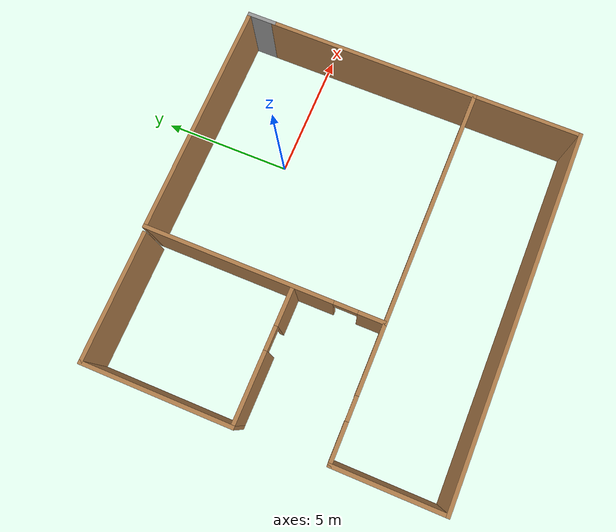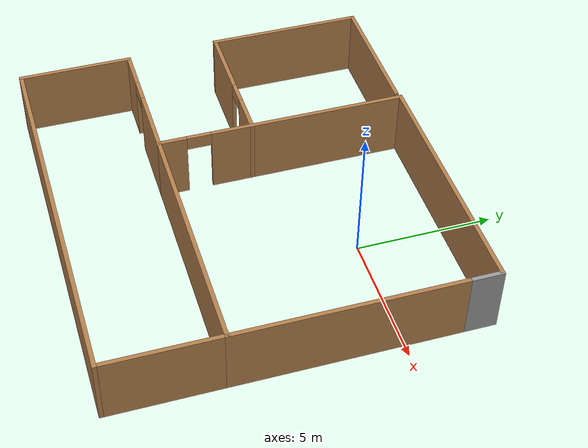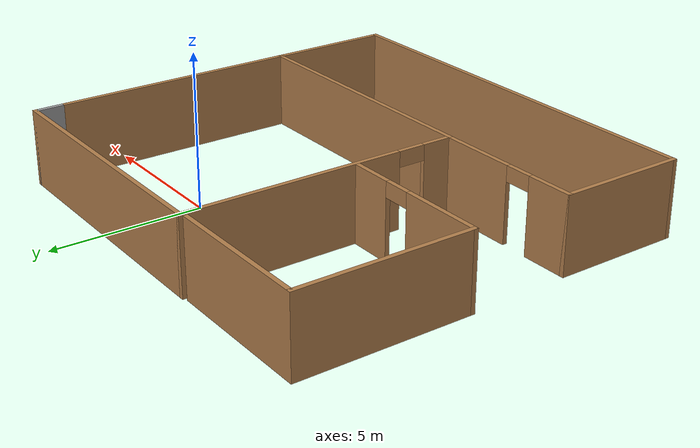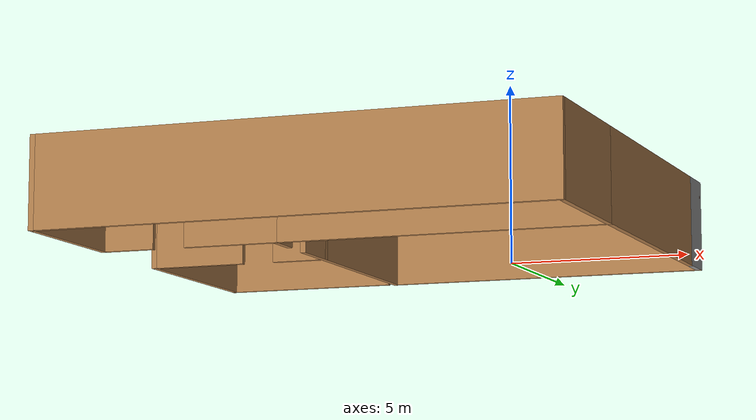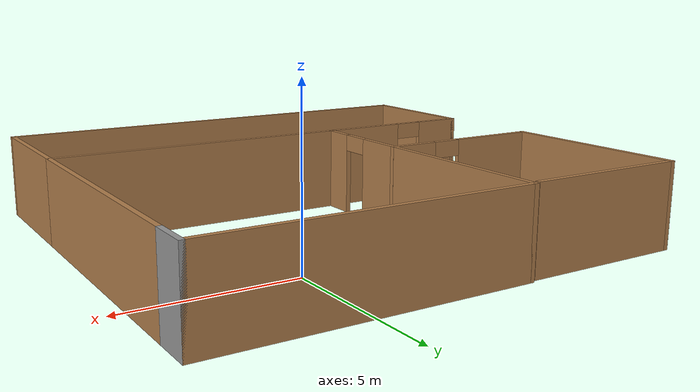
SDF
<?xml version='1.0'?>
<sdf version='1.7'>
  <model name='classrooms'>
    <pose>-2.59942 -3.43 0 0 -0 0</pose>
    <link name='Wall_0'>
      <pose>-2.00058 2.05 0 0 -0 -1.5708</pose>
      <visual name='Wall_0_Visual_0'>
        <pose>-0.990815 0 1.25 0 -0 0</pose>
        <geometry>
          <box>
            <size>7.26837 0.15 2.5</size>
          </box>
        </geometry>
        <material>
          <script>
            <uri>file://media/materials/scripts/gazebo.material</uri>
            <name>Gazebo/Wood</name>
          </script>
          <ambient>1 1 1 1</ambient>
        </material>
        <meta>
          <layer>0</layer>
        </meta>
      </visual>
      <collision name='Wall_0_Collision_0'>
        <geometry>
          <box>
            <size>7.26837 0.15 2.5</size>
          </box>
        </geometry>
        <pose>-0.990815 0 1.25 0 -0 0</pose>
      </collision>
      <visual name='Wall_0_Visual_1'>
        <pose>4.08418 0 1.25 0 -0 0</pose>
        <geometry>
          <box>
            <size>1.08163 0.15 2.5</size>
          </box>
        </geometry>
        <material>
          <script>
            <uri>file://media/materials/scripts/gazebo.material</uri>
            <name>Gazebo/Wood</name>
          </script>
          <ambient>1 1 1 1</ambient>
        </material>
        <meta>
          <layer>0</layer>
        </meta>
      </visual>
      <collision name='Wall_0_Collision_1'>
        <geometry>
          <box>
            <size>1.08163 0.15 2.5</size>
          </box>
        </geometry>
        <pose>4.08418 0 1.25 0 -0 0</pose>
      </collision>
      <visual name='Wall_0_Visual_2'>
        <pose>3.09337 0 2.25 0 -0 0</pose>
        <geometry>
          <box>
            <size>0.9 0.15 0.5</size>
          </box>
        </geometry>
        <material>
          <script>
            <uri>file://media/materials/scripts/gazebo.material</uri>
            <name>Gazebo/Wood</name>
          </script>
          <ambient>1 1 1 1</ambient>
        </material>
        <meta>
          <layer>0</layer>
        </meta>
      </visual>
      <collision name='Wall_0_Collision_2'>
        <geometry>
          <box>
            <size>0.9 0.15 0.5</size>
          </box>
        </geometry>
        <pose>3.09337 0 2.25 0 -0 0</pose>
      </collision>
    </link>
    <link name='Wall_10'>
      <pose>-4.54942 0.918041 0 0 -0 3.14159</pose>
      <visual name='Wall_10_Visual_0'>
        <pose>-1.84258 0 1.25 0 -0 0</pose>
        <geometry>
          <box>
            <size>1.56485 0.15 2.5</size>
          </box>
        </geometry>
        <material>
          <script>
            <uri>file://media/materials/scripts/gazebo.material</uri>
            <name>Gazebo/Wood</name>
          </script>
          <ambient>1 1 1 1</ambient>
        </material>
        <meta>
          <layer>0</layer>
        </meta>
      </visual>
      <collision name='Wall_10_Collision_0'>
        <geometry>
          <box>
            <size>1.56485 0.15 2.5</size>
          </box>
        </geometry>
        <pose>-1.84258 0 1.25 0 -0 0</pose>
      </collision>
      <visual name='Wall_10_Visual_1'>
        <pose>1.23242 0 1.25 0 -0 0</pose>
        <geometry>
          <box>
            <size>2.78516 0.15 2.5</size>
          </box>
        </geometry>
        <material>
          <script>
            <uri>file://media/materials/scripts/gazebo.material</uri>
            <name>Gazebo/Wood</name>
          </script>
          <ambient>1 1 1 1</ambient>
        </material>
        <meta>
          <layer>0</layer>
        </meta>
      </visual>
      <collision name='Wall_10_Collision_1'>
        <geometry>
          <box>
            <size>2.78516 0.15 2.5</size>
          </box>
        </geometry>
        <pose>1.23242 0 1.25 0 -0 0</pose>
      </collision>
      <visual name='Wall_10_Visual_2'>
        <pose>-0.610155 0 2.25 0 -0 0</pose>
        <geometry>
          <box>
            <size>0.9 0.15 0.5</size>
          </box>
        </geometry>
        <material>
          <script>
            <uri>file://media/materials/scripts/gazebo.material</uri>
            <name>Gazebo/Wood</name>
          </script>
          <ambient>1 1 1 1</ambient>
        </material>
        <meta>
          <layer>0</layer>
        </meta>
      </visual>
      <collision name='Wall_10_Collision_2'>
        <geometry>
          <box>
            <size>0.9 0.15 0.5</size>
          </box>
        </geometry>
        <pose>-0.610155 0 2.25 0 -0 0</pose>
      </collision>
    </link>
    <link name='Wall_11'>
      <collision name='Wall_11_Collision'>
        <geometry>
          <box>
            <size>5.75 0.15 2.5</size>
          </box>
        </geometry>
        <pose>0 0 1.25 0 -0 0</pose>
      </collision>
      <visual name='Wall_11_Visual'>
        <pose>0 0 1.25 0 -0 0</pose>
        <geometry>
          <box>
            <size>5.75 0.15 2.5</size>
          </box>
        </geometry>
        <material>
          <script>
            <uri>file://media/materials/scripts/gazebo.material</uri>
            <name>Gazebo/Wood</name>
          </script>
          <ambient>1 1 1 1</ambient>
        </material>
        <meta>
          <layer>0</layer>
        </meta>
      </visual>
      <pose>-7.09942 3.71804 0 0 -0 1.5708</pose>
    </link>
    <link name='Wall_12'>
      <collision name='Wall_12_Collision'>
        <geometry>
          <box>
            <size>5 0.15 2.5</size>
          </box>
        </geometry>
        <pose>0 0 1.25 0 -0 0</pose>
      </collision>
      <visual name='Wall_12_Visual'>
        <pose>0 0 1.25 0 -0 0</pose>
        <geometry>
          <box>
            <size>5 0.15 2.5</size>
          </box>
        </geometry>
        <material>
          <script>
            <uri>file://media/materials/scripts/gazebo.material</uri>
            <name>Gazebo/Wood</name>
          </script>
          <ambient>1 1 1 1</ambient>
        </material>
        <meta>
          <layer>0</layer>
        </meta>
      </visual>
      <pose>-4.67442 6.51804 0 0 -0 0</pose>
    </link>
    <link name='Wall_15'>
      <collision name='Wall_15_Collision'>
        <geometry>
          <box>
            <size>4.25 0.15 2.5</size>
          </box>
        </geometry>
        <pose>0 0 1.25 0 -0 0</pose>
      </collision>
      <visual name='Wall_15_Visual'>
        <pose>0 0 1.25 0 -0 0</pose>
        <geometry>
          <box>
            <size>4.25 0.15 2.5</size>
          </box>
        </geometry>
        <material>
          <script>
            <uri>file://media/materials/scripts/gazebo.material</uri>
            <name>Gazebo/Wood</name>
          </script>
          <ambient>1 1 1 1</ambient>
        </material>
        <meta>
          <layer>0</layer>
        </meta>
      </visual>
      <pose>7.09942 -4.55 0 0 -0 -1.5708</pose>
    </link>
    <link name='Wall_17'>
      <collision name='Wall_17_Collision'>
        <geometry>
          <box>
            <size>14.25 0.15 2.5</size>
          </box>
        </geometry>
        <pose>0 0 1.25 0 -0 0</pose>
      </collision>
      <visual name='Wall_17_Visual'>
        <pose>0 0 1.25 0 -0 0</pose>
        <geometry>
          <box>
            <size>14.25 0.15 2.5</size>
          </box>
        </geometry>
        <material>
          <script>
            <uri>file://media/materials/scripts/gazebo.material</uri>
            <name>Gazebo/Wood</name>
          </script>
          <ambient>1 1 1 1</ambient>
        </material>
        <meta>
          <layer>0</layer>
        </meta>
      </visual>
      <pose>0.04942 -6.6 0 0 -0 3.14159</pose>
    </link>
    <link name='Wall_18'>
      <collision name='Wall_18_Collision'>
        <geometry>
          <box>
            <size>4.25 0.15 2.5</size>
          </box>
        </geometry>
        <pose>0 0 1.25 0 -0 0</pose>
      </collision>
      <visual name='Wall_18_Visual'>
        <pose>0 0 1.25 0 -0 0</pose>
        <geometry>
          <box>
            <size>4.25 0.15 2.5</size>
          </box>
        </geometry>
        <material>
          <script>
            <uri>file://media/materials/scripts/gazebo.material</uri>
            <name>Gazebo/Wood</name>
          </script>
          <ambient>1 1 1 1</ambient>
        </material>
        <meta>
          <layer>0</layer>
        </meta>
      </visual>
      <pose>-7.00058 -4.55 0 0 -0 1.5708</pose>
    </link>
    <link name='Wall_19'>
      <pose>-4.50058 -2.5 0 0 -0 0</pose>
      <visual name='Wall_19_Visual_0'>
        <pose>-1.79224 0 1.25 0 -0 0</pose>
        <geometry>
          <box>
            <size>1.56552 0.15 2.5</size>
          </box>
        </geometry>
        <material>
          <script>
            <uri>file://media/materials/scripts/gazebo.material</uri>
            <name>Gazebo/Wood</name>
          </script>
          <ambient>1 1 1 1</ambient>
        </material>
        <meta>
          <layer>0</layer>
        </meta>
      </visual>
      <collision name='Wall_19_Collision_0'>
        <geometry>
          <box>
            <size>1.56552 0.15 2.5</size>
          </box>
        </geometry>
        <pose>-1.79224 0 1.25 0 -0 0</pose>
      </collision>
      <visual name='Wall_19_Visual_1'>
        <pose>1.23276 0 1.25 0 -0 0</pose>
        <geometry>
          <box>
            <size>2.68448 0.15 2.5</size>
          </box>
        </geometry>
        <material>
          <script>
            <uri>file://media/materials/scripts/gazebo.material</uri>
            <name>Gazebo/Wood</name>
          </script>
          <ambient>1 1 1 1</ambient>
        </material>
        <meta>
          <layer>0</layer>
        </meta>
      </visual>
      <collision name='Wall_19_Collision_1'>
        <geometry>
          <box>
            <size>2.68448 0.15 2.5</size>
          </box>
        </geometry>
        <pose>1.23276 0 1.25 0 -0 0</pose>
      </collision>
      <visual name='Wall_19_Visual_2'>
        <pose>-0.559483 0 2.25 0 -0 0</pose>
        <geometry>
          <box>
            <size>0.9 0.15 0.5</size>
          </box>
        </geometry>
        <material>
          <script>
            <uri>file://media/materials/scripts/gazebo.material</uri>
            <name>Gazebo/Wood</name>
          </script>
          <ambient>1 1 1 1</ambient>
        </material>
        <meta>
          <layer>0</layer>
        </meta>
      </visual>
      <collision name='Wall_19_Collision_2'>
        <geometry>
          <box>
            <size>0.9 0.15 0.5</size>
          </box>
        </geometry>
        <pose>-0.559483 0 2.25 0 -0 0</pose>
      </collision>
    </link>
    <link name='Wall_2'>
      <collision name='Wall_2_Collision'>
        <geometry>
          <box>
            <size>9.25 0.15 2.5</size>
          </box>
        </geometry>
        <pose>0 0 1.25 0 -0 0</pose>
      </collision>
      <visual name='Wall_2_Visual'>
        <pose>0 0 1.25 0 -0 0</pose>
        <geometry>
          <box>
            <size>9.25 0.15 2.5</size>
          </box>
        </geometry>
        <material>
          <script>
            <uri>file://media/materials/scripts/gazebo.material</uri>
            <name>Gazebo/Wood</name>
          </script>
          <ambient>1 1 1 1</ambient>
        </material>
        <meta>
          <layer>0</layer>
        </meta>
      </visual>
      <pose>2.54942 -2.5 0 0 -0 3.14159</pose>
    </link>
    <link name='Wall_5'>
      <collision name='Wall_5_Collision'>
        <geometry>
          <box>
            <size>8.25 0.15 2.5</size>
          </box>
        </geometry>
        <pose>0 0 1.25 0 -0 0</pose>
      </collision>
      <visual name='Wall_5_Visual'>
        <pose>0 0 1.25 0 -0 0</pose>
        <geometry>
          <box>
            <size>8.25 0.15 2.5</size>
          </box>
        </geometry>
        <material>
          <script>
            <uri>file://media/materials/scripts/gazebo.material</uri>
            <name>Gazebo/Wood</name>
          </script>
          <ambient>1 1 1 1</ambient>
        </material>
        <meta>
          <layer>0</layer>
        </meta>
      </visual>
      <pose>7.09942 1.55 0 0 -0 1.5708</pose>
    </link>
    <link name='Wall_7'>
      <collision name='Wall_7_Collision'>
        <geometry>
          <box>
            <size>9.25 0.15 2.5</size>
          </box>
        </geometry>
        <pose>0 0 1.25 0 -0 0</pose>
      </collision>
      <visual name='Wall_7_Visual'>
        <pose>0 0 1.25 0 -0 0</pose>
        <geometry>
          <box>
            <size>9.25 0.15 2.5</size>
          </box>
        </geometry>
        <material>
          <script>
            <uri>file://media/materials/scripts/gazebo.material</uri>
            <name>Gazebo/Wood</name>
          </script>
          <ambient>1 1 1 1</ambient>
        </material>
        <meta>
          <layer>0</layer>
        </meta>
      </visual>
      <pose>2.54942 6.6 0 0 -0 0</pose>
    </link>
    <link name='Wall_8'>
      <collision name='Wall_8_Collision'>
        <geometry>
          <box>
            <size>1.15 0.15 2.5</size>
          </box>
        </geometry>
        <pose>0 0 1.25 0 -0 0</pose>
      </collision>
      <visual name='Wall_8_Visual'>
        <pose>0 0 1.25 0 -0 0</pose>
        <geometry>
          <box>
            <size>1.15 0.15 2.5</size>
          </box>
        </geometry>
        <material>
          <script>
            <uri>file://media/materials/scripts/gazebo.material</uri>
            <name>Gazebo/Grey</name>
          </script>
          <ambient>1 1 1 1</ambient>
        </material>
        <meta>
          <layer>0</layer>
        </meta>
      </visual>
      <pose>7.09942 6.1 0 0 -0 -1.5708</pose>
    </link>
    <static>1</static>
  </model>
</sdf>
